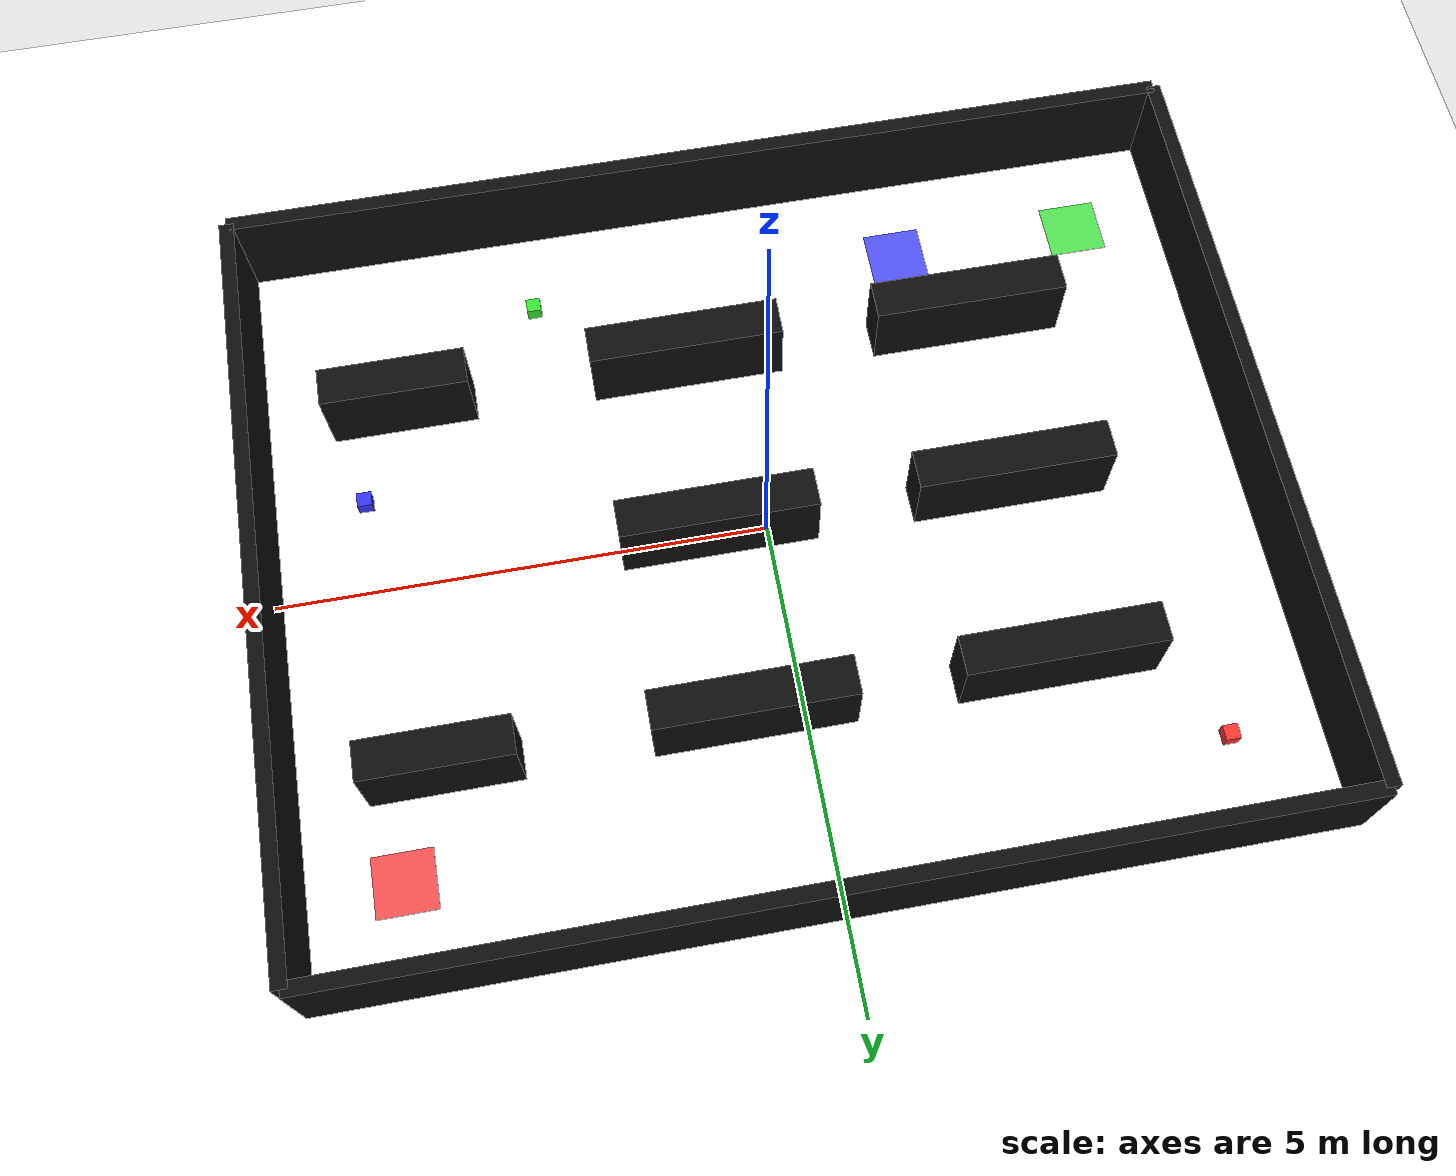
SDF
<?xml version="1.0" ?>
<sdf version="1.6">
  <world name="warehouse_world">

    <physics type="ode">
      <max_step_size>0.003</max_step_size>
      <real_time_factor>1.0</real_time_factor>
      <real_time_update_rate>333</real_time_update_rate>
    </physics>

    <plugin name="gazebo_ros_state" filename="libgazebo_ros_state.so">
      <ros>
        <namespace>/</namespace>
      </ros>
      <update_rate>50</update_rate>
    </plugin>

    <include>
      <uri>model://sun</uri>
    </include>

    <model name='ground_plane'>
      <static>true</static>
      <link name='link'>
        <collision name='collision'>
          <geometry>
            <plane>
              <normal>0 0 1</normal>
              <size>100 100</size>
            </plane>
          </geometry>
        </collision>
        <visual name='visual'>
          <geometry>
            <plane>
              <normal>0 0 1</normal>
              <size>100 100</size>
            </plane>
          </geometry>
          <material>
            <ambient>1 1 1 1</ambient>
            <diffuse>1 1 1 1</diffuse>
          </material>
        </visual>
      </link>
    </model>

    <model name="wall_north">
      <static>true</static>
      <pose>0 4 0.5 0 0 0</pose>
      <link name="link">
        <collision name="collision">
          <geometry><box><size>10 0.15 1.0</size></box></geometry>
        </collision>
        <visual name="visual">
          <geometry><box><size>10 0.15 1.0</size></box></geometry>
          <material>
            <ambient>0.05 0.05 0.05 1</ambient>
            <diffuse>0.05 0.05 0.05 1</diffuse>
          </material>
        </visual>
      </link>
    </model>

    <model name="wall_south">
      <static>true</static>
      <pose>0 -4 0.5 0 0 0</pose>
      <link name="link">
        <collision name="collision">
          <geometry><box><size>10 0.15 1.0</size></box></geometry>
        </collision>
        <visual name="visual">
          <geometry><box><size>10 0.15 1.0</size></box></geometry>
          <material>
            <ambient>0.05 0.05 0.05 1</ambient>
            <diffuse>0.05 0.05 0.05 1</diffuse>
          </material>
        </visual>
      </link>
    </model>

    <model name="wall_east">
      <static>true</static>
      <pose>5 0 0.5 0 0 0</pose>
      <link name="link">
        <collision name="collision">
          <geometry><box><size>0.15 8 1.0</size></box></geometry>
        </collision>
        <visual name="visual">
          <geometry><box><size>0.15 8 1.0</size></box></geometry>
          <material>
            <ambient>0.05 0.05 0.05 1</ambient>
            <diffuse>0.05 0.05 0.05 1</diffuse>
          </material>
        </visual>
      </link>
    </model>

    <model name="wall_west">
      <static>true</static>
      <pose>-5 0 0.5 0 0 0</pose>
      <link name="link">
        <collision name="collision">
          <geometry><box><size>0.15 8 1.0</size></box></geometry>
        </collision>
        <visual name="visual">
          <geometry><box><size>0.15 8 1.0</size></box></geometry>
          <material>
            <ambient>0.05 0.05 0.05 1</ambient>
            <diffuse>0.05 0.05 0.05 1</diffuse>
          </material>
        </visual>
      </link>
    </model>

    <model name="shelf_1a">
      <static>true</static>
      <pose>-2.5 2.0 0.4 0 0 0</pose>
      <link name="link">
        <collision name="collision">
          <geometry><box><size>2.0 0.4 0.8</size></box></geometry>
        </collision>
        <visual name="visual">
          <geometry><box><size>2.0 0.4 0.8</size></box></geometry>
          <material>
            <ambient>0.05 0.05 0.05 1</ambient>
            <diffuse>0.05 0.05 0.05 1</diffuse>
          </material>
        </visual>
      </link>
    </model>

    <model name="shelf_1b">
      <static>true</static>
      <pose>-2.5 0.0 0.4 0 0 0</pose>
      <link name="link">
        <collision name="collision">
          <geometry><box><size>2.0 0.4 0.8</size></box></geometry>
        </collision>
        <visual name="visual">
          <geometry><box><size>2.0 0.4 0.8</size></box></geometry>
          <material>
            <ambient>0.05 0.05 0.05 1</ambient>
            <diffuse>0.05 0.05 0.05 1</diffuse>
          </material>
        </visual>
      </link>
    </model>

    <model name="shelf_1c">
      <static>true</static>
      <pose>-2.5 -2.0 0.4 0 0 0</pose>
      <link name="link">
        <collision name="collision">
          <geometry><box><size>2.0 0.4 0.8</size></box></geometry>
        </collision>
        <visual name="visual">
          <geometry><box><size>2.0 0.4 0.8</size></box></geometry>
          <material>
            <ambient>0.05 0.05 0.05 1</ambient>
            <diffuse>0.05 0.05 0.05 1</diffuse>
          </material>
        </visual>
      </link>
    </model>

    <model name="shelf_2a">
      <static>true</static>
      <pose>0.5 2.0 0.4 0 0 0</pose>
      <link name="link">
        <collision name="collision">
          <geometry><box><size>2.0 0.4 0.8</size></box></geometry>
        </collision>
        <visual name="visual">
          <geometry><box><size>2.0 0.4 0.8</size></box></geometry>
          <material>
            <ambient>0.05 0.05 0.05 1</ambient>
            <diffuse>0.05 0.05 0.05 1</diffuse>
          </material>
        </visual>
      </link>
    </model>

    <model name="shelf_2b">
      <static>true</static>
      <pose>0.5 0.0 0.4 0 0 0</pose>
      <link name="link">
        <collision name="collision">
          <geometry><box><size>2.0 0.4 0.8</size></box></geometry>
        </collision>
        <visual name="visual">
          <geometry><box><size>2.0 0.4 0.8</size></box></geometry>
          <material>
            <ambient>0.05 0.05 0.05 1</ambient>
            <diffuse>0.05 0.05 0.05 1</diffuse>
          </material>
        </visual>
      </link>
    </model>

    <model name="shelf_2c">
      <static>true</static>
      <pose>0.5 -2.0 0.4 0 0 0</pose>
      <link name="link">
        <collision name="collision">
          <geometry><box><size>2.0 0.4 0.8</size></box></geometry>
        </collision>
        <visual name="visual">
          <geometry><box><size>2.0 0.4 0.8</size></box></geometry>
          <material>
            <ambient>0.05 0.05 0.05 1</ambient>
            <diffuse>0.05 0.05 0.05 1</diffuse>
          </material>
        </visual>
      </link>
    </model>

    <model name="shelf_3a">
      <static>true</static>
      <pose>3.5 2.0 0.4 0 0 0</pose>
      <link name="link">
        <collision name="collision">
          <geometry><box><size>1.5 0.4 0.8</size></box></geometry>
        </collision>
        <visual name="visual">
          <geometry><box><size>1.5 0.4 0.8</size></box></geometry>
          <material>
            <ambient>0.05 0.05 0.05 1</ambient>
            <diffuse>0.05 0.05 0.05 1</diffuse>
          </material>
        </visual>
      </link>
    </model>

    <model name="shelf_3b">
      <static>true</static>
      <pose>3.5 -2.0 0.4 0 0 0</pose>
      <link name="link">
        <collision name="collision">
          <geometry><box><size>1.5 0.4 0.8</size></box></geometry>
        </collision>
        <visual name="visual">
          <geometry><box><size>1.5 0.4 0.8</size></box></geometry>
          <material>
            <ambient>0.05 0.05 0.05 1</ambient>
            <diffuse>0.05 0.05 0.05 1</diffuse>
          </material>
        </visual>
      </link>
    </model>

    <model name="sort_obj_red">
      <static>false</static>
      <pose>-4.0 3.0 0.075 0 0 0</pose>
      <link name="link">
        <collision name="collision">
          <geometry><box><size>0.15 0.15 0.15</size></box></geometry>
        </collision>
        <visual name="visual">
          <geometry><box><size>0.15 0.15 0.15</size></box></geometry>
          <material>
            <ambient>0.9 0.1 0.1 1</ambient>
            <diffuse>1.0 0.2 0.2 1</diffuse>
          </material>
        </visual>
      </link>
    </model>

    <model name="sort_obj_green">
      <static>false</static>
      <pose>2.0 -3.0 0.075 0 0 0</pose>
      <link name="link">
        <collision name="collision">
          <geometry><box><size>0.15 0.15 0.15</size></box></geometry>
        </collision>
        <visual name="visual">
          <geometry><box><size>0.15 0.15 0.15</size></box></geometry>
          <material>
            <ambient>0.1 0.8 0.1 1</ambient>
            <diffuse>0.2 0.9 0.2 1</diffuse>
          </material>
        </visual>
      </link>
    </model>

    <model name="sort_obj_blue">
      <static>false</static>
      <pose>4.0 -1.0 0.075 0 0 0</pose>
      <link name="link">
        <collision name="collision">
          <geometry><box><size>0.15 0.15 0.15</size></box></geometry>
        </collision>
        <visual name="visual">
          <geometry><box><size>0.15 0.15 0.15</size></box></geometry>
          <material>
            <ambient>0.1 0.1 0.9 1</ambient>
            <diffuse>0.2 0.2 1.0 1</diffuse>
          </material>
        </visual>
      </link>
    </model>

    <model name="bin_red">
      <static>true</static>
      <pose>4.0 3.0 0.005 0 0 0</pose>
      <link name="link">
        <visual name="visual">
          <geometry><box><size>0.6 0.6 0.01</size></box></geometry>
          <material>
            <ambient>0.9 0.1 0.1 0.8</ambient>
            <diffuse>1.0 0.2 0.2 0.8</diffuse>
          </material>
        </visual>
      </link>
    </model>

    <model name="bin_green">
      <static>true</static>
      <pose>-4.0 -3.0 0.005 0 0 0</pose>
      <link name="link">
        <visual name="visual">
          <geometry><box><size>0.6 0.6 0.01</size></box></geometry>
          <material>
            <ambient>0.1 0.8 0.1 0.8</ambient>
            <diffuse>0.2 0.9 0.2 0.8</diffuse>
          </material>
        </visual>
      </link>
    </model>

    <model name="bin_blue">
      <static>true</static>
      <pose>-2.0 -3.0 0.005 0 0 0</pose>
      <link name="link">
        <visual name="visual">
          <geometry><box><size>0.6 0.6 0.01</size></box></geometry>
          <material>
            <ambient>0.1 0.1 0.9 0.8</ambient>
            <diffuse>0.2 0.2 1.0 0.8</diffuse>
          </material>
        </visual>
      </link>
    </model>

  </world>
</sdf>
